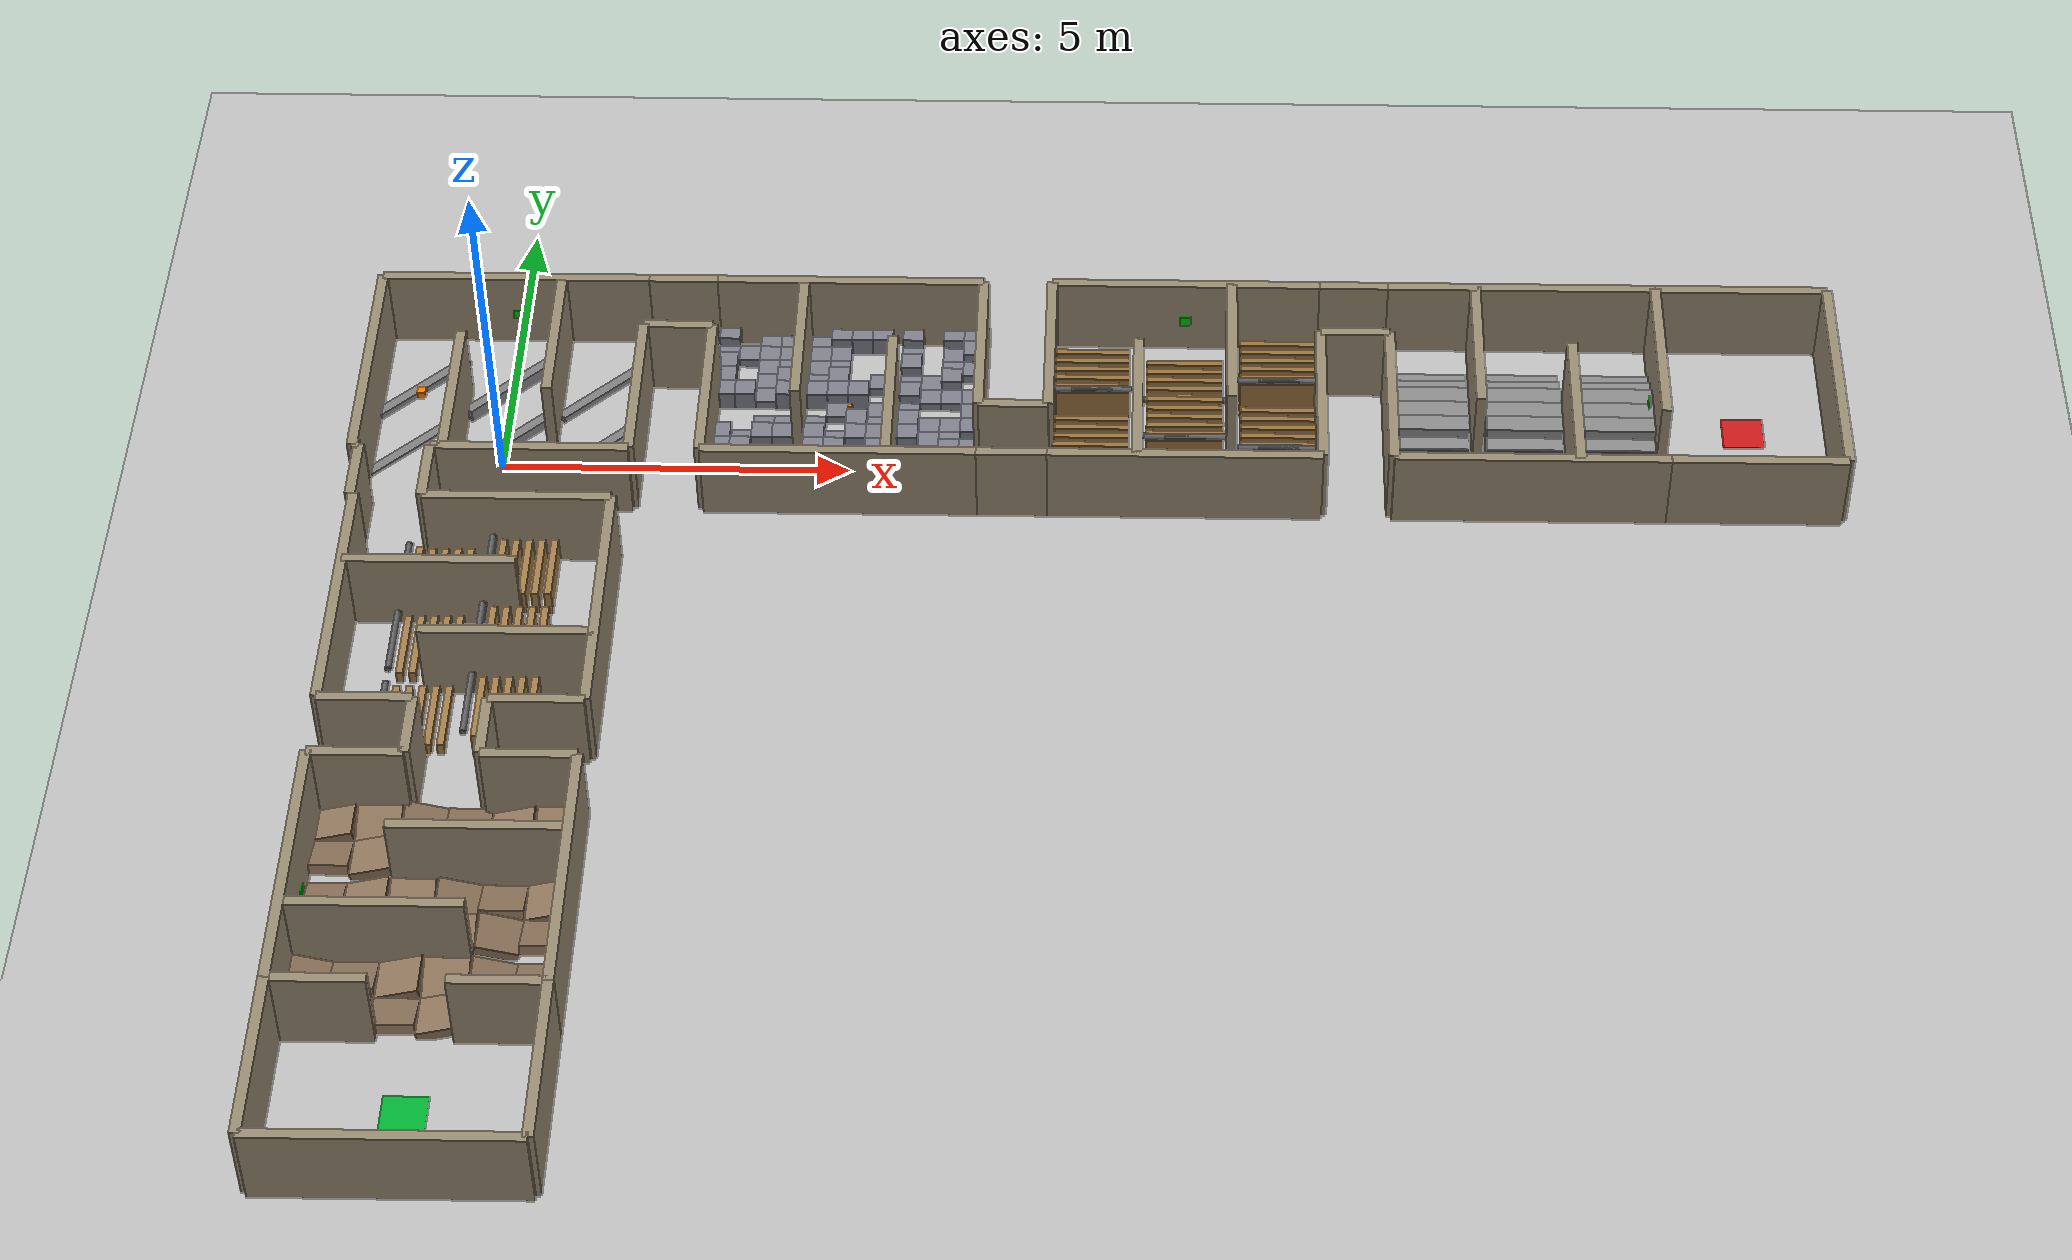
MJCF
<mujoco model="lrc_2026">
  <compiler angle="radian" coordinate="local"/>
  <option timestep="0.002" gravity="0 0 -9.81"/>

  <asset>
    <texture name="grid" type="2d" builtin="checker"
             rgb1="0.8 0.8 0.8" rgb2="0.7 0.7 0.7"
             width="512" height="512"/>
    <material name="ground_mat" texture="grid" texrepeat="10 10"/>
  </asset>

  <worldbody>
    <light pos="0 0 10" dir="-0.5 0.1 -0.9" diffuse="0.8 0.8 0.8"/>
    <geom name="ground" type="plane" size="25 25 0.1"
          material="ground_mat"/>

    <geom name="LA_S_a" type="box" pos="-1.1500 -10.6000 0.6000" size="0.6500 0.0750 0.6000" rgba="0.6 0.55 0.45 1.0"/>
    <geom name="LA_S_b" type="box" pos="1.1500 -10.6000 0.6000" size="0.6500 0.0750 0.6000" rgba="0.6 0.55 0.45 1.0"/>
    <geom name="LA_N_a" type="box" pos="-1.1500 -6.7000 0.6000" size="0.6500 0.0750 0.6000" rgba="0.6 0.55 0.45 1.0"/>
    <geom name="LA_N_b" type="box" pos="1.1500 -6.7000 0.6000" size="0.6500 0.0750 0.6000" rgba="0.6 0.55 0.45 1.0"/>
    <geom name="LA_W" type="box" pos="-1.8000 -8.6500 0.6000" size="0.0750 1.9500 0.6000" rgba="0.6 0.55 0.45 1.0"/>
    <geom name="LA_E" type="box" pos="1.8000 -8.6500 0.6000" size="0.0750 1.9500 0.6000" rgba="0.6 0.55 0.45 1.0"/>
    <geom name="LA_d0" type="box" pos="-0.6000 -9.3250 0.6000" size="1.2000 0.0750 0.6000" rgba="0.6 0.55 0.45 1.0"/>
    <geom name="LA_d1" type="box" pos="0.6000 -7.9750 0.6000" size="1.2000 0.0750 0.6000" rgba="0.6 0.55 0.45 1.0"/>
    <geom name="ramp_0_0_0" type="box" pos="-1.5000 -10.3000 0.0800" size="0.3000 0.3000 0.0800" rgba="0.55 0.45 0.35 1.0" euler="0.2618 0 0"/>
    <geom name="ramp_0_0_1" type="box" pos="-0.9000 -10.3000 0.0800" size="0.3000 0.3000 0.0800" rgba="0.55 0.45 0.35 1.0" euler="0 0.2618 0"/>
    <geom name="ramp_0_0_2" type="box" pos="-0.3000 -10.3000 0.0800" size="0.3000 0.3000 0.0800" rgba="0.55 0.45 0.35 1.0" euler="-0.2618 0 0"/>
    <geom name="ramp_0_0_3" type="box" pos="0.3000 -10.3000 0.0800" size="0.3000 0.3000 0.0800" rgba="0.55 0.45 0.35 1.0" euler="0 -0.2618 0"/>
    <geom name="ramp_0_0_4" type="box" pos="0.9000 -10.3000 0.0800" size="0.3000 0.3000 0.0800" rgba="0.55 0.45 0.35 1.0" euler="0.2618 0 0"/>
    <geom name="ramp_0_0_5" type="box" pos="1.5000 -10.3000 0.0800" size="0.3000 0.3000 0.0800" rgba="0.55 0.45 0.35 1.0" euler="0 0.2618 0"/>
    <geom name="ramp_0_1_0" type="box" pos="-1.5000 -9.7000 0.0800" size="0.3000 0.3000 0.0800" rgba="0.55 0.45 0.35 1.0" euler="0 0.2618 0"/>
    <geom name="ramp_0_1_1" type="box" pos="-0.9000 -9.7000 0.0800" size="0.3000 0.3000 0.0800" rgba="0.55 0.45 0.35 1.0" euler="-0.2618 0 0"/>
    <geom name="ramp_0_1_2" type="box" pos="-0.3000 -9.7000 0.0800" size="0.3000 0.3000 0.0800" rgba="0.55 0.45 0.35 1.0" euler="0 -0.2618 0"/>
    <geom name="ramp_0_1_3" type="box" pos="0.3000 -9.7000 0.0800" size="0.3000 0.3000 0.0800" rgba="0.55 0.45 0.35 1.0" euler="0.2618 0 0"/>
    <geom name="ramp_0_1_4" type="box" pos="0.9000 -9.7000 0.0800" size="0.3000 0.3000 0.0800" rgba="0.55 0.45 0.35 1.0" euler="0 0.2618 0"/>
    <geom name="ramp_0_1_5" type="box" pos="1.5000 -9.7000 0.0800" size="0.3000 0.3000 0.0800" rgba="0.55 0.45 0.35 1.0" euler="-0.2618 0 0"/>
    <geom name="ramp_1_0_0" type="box" pos="-1.5000 -8.9500 0.0800" size="0.3000 0.3000 0.0800" rgba="0.55 0.45 0.35 1.0" euler="0 0.2618 0"/>
    <geom name="ramp_1_0_1" type="box" pos="-0.9000 -8.9500 0.0800" size="0.3000 0.3000 0.0800" rgba="0.55 0.45 0.35 1.0" euler="-0.2618 0 0"/>
    <geom name="ramp_1_0_2" type="box" pos="-0.3000 -8.9500 0.0800" size="0.3000 0.3000 0.0800" rgba="0.55 0.45 0.35 1.0" euler="0 -0.2618 0"/>
    <geom name="ramp_1_0_3" type="box" pos="0.3000 -8.9500 0.0800" size="0.3000 0.3000 0.0800" rgba="0.55 0.45 0.35 1.0" euler="0.2618 0 0"/>
    <geom name="ramp_1_0_4" type="box" pos="0.9000 -8.9500 0.0800" size="0.3000 0.3000 0.0800" rgba="0.55 0.45 0.35 1.0" euler="0 0.2618 0"/>
    <geom name="ramp_1_0_5" type="box" pos="1.5000 -8.9500 0.0800" size="0.3000 0.3000 0.0800" rgba="0.55 0.45 0.35 1.0" euler="-0.2618 0 0"/>
    <geom name="ramp_1_1_0" type="box" pos="-1.5000 -8.3500 0.0800" size="0.3000 0.3000 0.0800" rgba="0.55 0.45 0.35 1.0" euler="-0.2618 0 0"/>
    <geom name="ramp_1_1_1" type="box" pos="-0.9000 -8.3500 0.0800" size="0.3000 0.3000 0.0800" rgba="0.55 0.45 0.35 1.0" euler="0 -0.2618 0"/>
    <geom name="ramp_1_1_2" type="box" pos="-0.3000 -8.3500 0.0800" size="0.3000 0.3000 0.0800" rgba="0.55 0.45 0.35 1.0" euler="0.2618 0 0"/>
    <geom name="ramp_1_1_3" type="box" pos="0.3000 -8.3500 0.0800" size="0.3000 0.3000 0.0800" rgba="0.55 0.45 0.35 1.0" euler="0 0.2618 0"/>
    <geom name="ramp_1_1_4" type="box" pos="0.9000 -8.3500 0.0800" size="0.3000 0.3000 0.0800" rgba="0.55 0.45 0.35 1.0" euler="-0.2618 0 0"/>
    <geom name="ramp_1_1_5" type="box" pos="1.5000 -8.3500 0.0800" size="0.3000 0.3000 0.0800" rgba="0.55 0.45 0.35 1.0" euler="0 -0.2618 0"/>
    <geom name="ramp_2_0_0" type="box" pos="-1.5000 -7.6000 0.0800" size="0.3000 0.3000 0.0800" rgba="0.55 0.45 0.35 1.0" euler="-0.2618 0 0"/>
    <geom name="ramp_2_0_1" type="box" pos="-0.9000 -7.6000 0.0800" size="0.3000 0.3000 0.0800" rgba="0.55 0.45 0.35 1.0" euler="0 -0.2618 0"/>
    <geom name="ramp_2_0_2" type="box" pos="-0.3000 -7.6000 0.0800" size="0.3000 0.3000 0.0800" rgba="0.55 0.45 0.35 1.0" euler="0.2618 0 0"/>
    <geom name="ramp_2_0_3" type="box" pos="0.3000 -7.6000 0.0800" size="0.3000 0.3000 0.0800" rgba="0.55 0.45 0.35 1.0" euler="0 0.2618 0"/>
    <geom name="ramp_2_0_4" type="box" pos="0.9000 -7.6000 0.0800" size="0.3000 0.3000 0.0800" rgba="0.55 0.45 0.35 1.0" euler="-0.2618 0 0"/>
    <geom name="ramp_2_0_5" type="box" pos="1.5000 -7.6000 0.0800" size="0.3000 0.3000 0.0800" rgba="0.55 0.45 0.35 1.0" euler="0 -0.2618 0"/>
    <geom name="ramp_2_1_0" type="box" pos="-1.5000 -7.0000 0.0800" size="0.3000 0.3000 0.0800" rgba="0.55 0.45 0.35 1.0" euler="0 -0.2618 0"/>
    <geom name="ramp_2_1_1" type="box" pos="-0.9000 -7.0000 0.0800" size="0.3000 0.3000 0.0800" rgba="0.55 0.45 0.35 1.0" euler="0.2618 0 0"/>
    <geom name="ramp_2_1_2" type="box" pos="-0.3000 -7.0000 0.0800" size="0.3000 0.3000 0.0800" rgba="0.55 0.45 0.35 1.0" euler="0 0.2618 0"/>
    <geom name="ramp_2_1_3" type="box" pos="0.3000 -7.0000 0.0800" size="0.3000 0.3000 0.0800" rgba="0.55 0.45 0.35 1.0" euler="-0.2618 0 0"/>
    <geom name="ramp_2_1_4" type="box" pos="0.9000 -7.0000 0.0800" size="0.3000 0.3000 0.0800" rgba="0.55 0.45 0.35 1.0" euler="0 -0.2618 0"/>
    <geom name="ramp_2_1_5" type="box" pos="1.5000 -7.0000 0.0800" size="0.3000 0.3000 0.0800" rgba="0.55 0.45 0.35 1.0" euler="0.2618 0 0"/>
    <geom name="qr_A" type="box" pos="-1.6500 -8.6500 0.6000" size="0.0100 0.0750 0.0750" rgba="0.0 0.8 0.0 1.0"/>
    <geom name="haz_A" type="box" pos="0.5000 -10.0000 0.0600" size="0.0600 0.0600 0.0600" rgba="1.0 0.5 0.0 1.0"/>
    <geom name="LB_S_a" type="box" pos="-1.1500 -5.7000 0.6000" size="0.6500 0.0750 0.6000" rgba="0.6 0.55 0.45 1.0"/>
    <geom name="LB_S_b" type="box" pos="1.1500 -5.7000 0.6000" size="0.6500 0.0750 0.6000" rgba="0.6 0.55 0.45 1.0"/>
    <geom name="LB_N_b" type="box" pos="0.4750 -1.8000 0.6000" size="1.3250 0.0750 0.6000" rgba="0.6 0.55 0.45 1.0"/>
    <geom name="LB_W" type="box" pos="-1.8000 -3.7500 0.6000" size="0.0750 1.9500 0.6000" rgba="0.6 0.55 0.45 1.0"/>
    <geom name="LB_E" type="box" pos="1.8000 -3.7500 0.6000" size="0.0750 1.9500 0.6000" rgba="0.6 0.55 0.45 1.0"/>
    <geom name="LB_d0" type="box" pos="0.6000 -4.4250 0.6000" size="1.2000 0.0750 0.6000" rgba="0.6 0.55 0.45 1.0"/>
    <geom name="LB_d1" type="box" pos="-0.6000 -3.0750 0.6000" size="1.2000 0.0750 0.6000" rgba="0.6 0.55 0.45 1.0"/>
    <geom name="plt_0_0_0" type="box" pos="-0.9600 -5.1000 0.1000" size="0.0500 0.5500 0.1000" rgba="0.65 0.5 0.3 1.0"/>
    <geom name="plt_0_0_1" type="box" pos="-0.7800 -5.1000 0.1000" size="0.0500 0.5500 0.1000" rgba="0.65 0.5 0.3 1.0"/>
    <geom name="plt_0_0_2" type="box" pos="-0.6000 -5.1000 0.1000" size="0.0500 0.5500 0.1000" rgba="0.65 0.5 0.3 1.0"/>
    <geom name="plt_0_0_3" type="box" pos="-0.4200 -5.1000 0.1000" size="0.0500 0.5500 0.1000" rgba="0.65 0.5 0.3 1.0"/>
    <geom name="plt_0_0_4" type="box" pos="-0.2400 -5.1000 0.1000" size="0.0500 0.5500 0.1000" rgba="0.65 0.5 0.3 1.0"/>
    <geom name="pipe_0_0" type="cylinder" pos="-1.1000 -5.1000 0.2500" size="0.05 0.5500" rgba="0.4 0.4 0.4 1.0" euler="1.5708 0 0"/>
    <geom name="plt_0_1_0" type="box" pos="0.2400 -5.1000 0.2000" size="0.0500 0.5500 0.2000" rgba="0.65 0.5 0.3 1.0"/>
    <geom name="plt_0_1_1" type="box" pos="0.4200 -5.1000 0.2000" size="0.0500 0.5500 0.2000" rgba="0.65 0.5 0.3 1.0"/>
    <geom name="plt_0_1_2" type="box" pos="0.6000 -5.1000 0.2000" size="0.0500 0.5500 0.2000" rgba="0.65 0.5 0.3 1.0"/>
    <geom name="plt_0_1_3" type="box" pos="0.7800 -5.1000 0.2000" size="0.0500 0.5500 0.2000" rgba="0.65 0.5 0.3 1.0"/>
    <geom name="plt_0_1_4" type="box" pos="0.9600 -5.1000 0.2000" size="0.0500 0.5500 0.2000" rgba="0.65 0.5 0.3 1.0"/>
    <geom name="pipe_0_1" type="cylinder" pos="0.1000 -5.1000 0.4500" size="0.05 0.5500" rgba="0.4 0.4 0.4 1.0" euler="1.5708 0 0"/>
    <geom name="plt_1_0_0" type="box" pos="-0.9600 -3.7500 0.1000" size="0.0500 0.5500 0.1000" rgba="0.65 0.5 0.3 1.0"/>
    <geom name="plt_1_0_1" type="box" pos="-0.7800 -3.7500 0.1000" size="0.0500 0.5500 0.1000" rgba="0.65 0.5 0.3 1.0"/>
    <geom name="plt_1_0_2" type="box" pos="-0.6000 -3.7500 0.1000" size="0.0500 0.5500 0.1000" rgba="0.65 0.5 0.3 1.0"/>
    <geom name="plt_1_0_3" type="box" pos="-0.4200 -3.7500 0.1000" size="0.0500 0.5500 0.1000" rgba="0.65 0.5 0.3 1.0"/>
    <geom name="plt_1_0_4" type="box" pos="-0.2400 -3.7500 0.1000" size="0.0500 0.5500 0.1000" rgba="0.65 0.5 0.3 1.0"/>
    <geom name="pipe_1_0" type="cylinder" pos="-1.1000 -3.7500 0.2500" size="0.05 0.5500" rgba="0.4 0.4 0.4 1.0" euler="1.5708 0 0"/>
    <geom name="plt_1_1_0" type="box" pos="0.2400 -3.7500 0.2000" size="0.0500 0.5500 0.2000" rgba="0.65 0.5 0.3 1.0"/>
    <geom name="plt_1_1_1" type="box" pos="0.4200 -3.7500 0.2000" size="0.0500 0.5500 0.2000" rgba="0.65 0.5 0.3 1.0"/>
    <geom name="plt_1_1_2" type="box" pos="0.6000 -3.7500 0.2000" size="0.0500 0.5500 0.2000" rgba="0.65 0.5 0.3 1.0"/>
    <geom name="plt_1_1_3" type="box" pos="0.7800 -3.7500 0.2000" size="0.0500 0.5500 0.2000" rgba="0.65 0.5 0.3 1.0"/>
    <geom name="plt_1_1_4" type="box" pos="0.9600 -3.7500 0.2000" size="0.0500 0.5500 0.2000" rgba="0.65 0.5 0.3 1.0"/>
    <geom name="pipe_1_1" type="cylinder" pos="0.1000 -3.7500 0.4500" size="0.05 0.5500" rgba="0.4 0.4 0.4 1.0" euler="1.5708 0 0"/>
    <geom name="plt_2_0_0" type="box" pos="-0.9600 -2.4000 0.1000" size="0.0500 0.5500 0.1000" rgba="0.65 0.5 0.3 1.0"/>
    <geom name="plt_2_0_1" type="box" pos="-0.7800 -2.4000 0.1000" size="0.0500 0.5500 0.1000" rgba="0.65 0.5 0.3 1.0"/>
    <geom name="plt_2_0_2" type="box" pos="-0.6000 -2.4000 0.1000" size="0.0500 0.5500 0.1000" rgba="0.65 0.5 0.3 1.0"/>
    <geom name="plt_2_0_3" type="box" pos="-0.4200 -2.4000 0.1000" size="0.0500 0.5500 0.1000" rgba="0.65 0.5 0.3 1.0"/>
    <geom name="plt_2_0_4" type="box" pos="-0.2400 -2.4000 0.1000" size="0.0500 0.5500 0.1000" rgba="0.65 0.5 0.3 1.0"/>
    <geom name="pipe_2_0" type="cylinder" pos="-1.1000 -2.4000 0.2500" size="0.05 0.5500" rgba="0.4 0.4 0.4 1.0" euler="1.5708 0 0"/>
    <geom name="plt_2_1_0" type="box" pos="0.2400 -2.4000 0.2000" size="0.0500 0.5500 0.2000" rgba="0.65 0.5 0.3 1.0"/>
    <geom name="plt_2_1_1" type="box" pos="0.4200 -2.4000 0.2000" size="0.0500 0.5500 0.2000" rgba="0.65 0.5 0.3 1.0"/>
    <geom name="plt_2_1_2" type="box" pos="0.6000 -2.4000 0.2000" size="0.0500 0.5500 0.2000" rgba="0.65 0.5 0.3 1.0"/>
    <geom name="plt_2_1_3" type="box" pos="0.7800 -2.4000 0.2000" size="0.0500 0.5500 0.2000" rgba="0.65 0.5 0.3 1.0"/>
    <geom name="plt_2_1_4" type="box" pos="0.9600 -2.4000 0.2000" size="0.0500 0.5500 0.2000" rgba="0.65 0.5 0.3 1.0"/>
    <geom name="pipe_2_1" type="cylinder" pos="0.1000 -2.4000 0.4500" size="0.05 0.5500" rgba="0.4 0.4 0.4 1.0" euler="1.5708 0 0"/>
    <geom name="qr_B" type="box" pos="1.6500 -3.7500 0.6000" size="0.0100 0.0750 0.0750" rgba="0.0 0.8 0.0 1.0"/>
    <geom name="haz_B" type="box" pos="-0.5000 -2.4000 0.0600" size="0.0600 0.0600 0.0600" rgba="1.0 0.5 0.0 1.0"/>
    <geom name="LC_S_a" type="box" pos="-1.9000 -0.8000 0.6000" size="0.0500 0.0750 0.6000" rgba="0.6 0.55 0.45 1.0"/>
    <geom name="LC_S_b" type="box" pos="0.5500 -0.8000 0.6000" size="1.4000 0.0750 0.6000" rgba="0.6 0.55 0.45 1.0"/>
    <geom name="LC_N" type="box" pos="0.0000 2.8000 0.6000" size="1.9500 0.0750 0.6000" rgba="0.6 0.55 0.45 1.0"/>
    <geom name="LC_W" type="box" pos="-1.9500 1.0000 0.6000" size="0.0750 1.8000 0.6000" rgba="0.6 0.55 0.45 1.0"/>
    <geom name="LC_E_a" type="box" pos="1.9500 0.5000 0.6000" size="0.0750 1.3000 0.6000" rgba="0.6 0.55 0.45 1.0"/>
    <geom name="LC_d0" type="box" pos="-0.6750 0.4000 0.6000" size="0.0750 1.2000 0.6000" rgba="0.6 0.55 0.45 1.0"/>
    <geom name="LC_d1" type="box" pos="0.6750 1.6000 0.6000" size="0.0750 1.2000 0.6000" rgba="0.6 0.55 0.45 1.0"/>
    <geom name="kr_0_0" type="box" pos="-1.3500 0.4000 0.0250" size="0.8500 0.0750 0.0250" rgba="0.5 0.5 0.5 1.0" euler="0 0 0.7854"/>
    <geom name="kr_0_1" type="box" pos="-1.3500 1.6000 0.0500" size="0.8500 0.0750 0.0500" rgba="0.5 0.5 0.5 1.0" euler="0 0 0.7854"/>
    <geom name="kr_1_0" type="box" pos="0.0000 0.4000 0.0750" size="0.8500 0.0750 0.0750" rgba="0.5 0.5 0.5 1.0" euler="0 0 0.7854"/>
    <geom name="kr_1_1" type="box" pos="0.0000 1.6000 0.1000" size="0.8500 0.0750 0.1000" rgba="0.5 0.5 0.5 1.0" euler="0 0 0.7854"/>
    <geom name="kr_2_0" type="box" pos="1.3500 0.4000 0.0250" size="0.8500 0.0750 0.0250" rgba="0.5 0.5 0.5 1.0" euler="0 0 0.7854"/>
    <geom name="kr_2_1" type="box" pos="1.3500 1.6000 0.0500" size="0.8500 0.0750 0.0500" rgba="0.5 0.5 0.5 1.0" euler="0 0 0.7854"/>
    <geom name="qr_C" type="box" pos="0 2.6500 0.6000" size="0.0750 0.0100 0.0750" rgba="0.0 0.8 0.0 1.0"/>
    <geom name="haz_C" type="box" pos="-1.3500 1.5000 0.0600" size="0.0600 0.0600 0.0600" rgba="1.0 0.5 0.0 1.0"/>
    <geom name="LD_S" type="box" pos="4.9000 -0.8000 0.6000" size="1.9500 0.0750 0.6000" rgba="0.6 0.55 0.45 1.0"/>
    <geom name="LD_N" type="box" pos="4.9000 2.8000 0.6000" size="1.9500 0.0750 0.6000" rgba="0.6 0.55 0.45 1.0"/>
    <geom name="LD_W_a" type="box" pos="2.9500 0.5000 0.6000" size="0.0750 1.3000 0.6000" rgba="0.6 0.55 0.45 1.0"/>
    <geom name="LD_E_b" type="box" pos="6.8500 1.5000 0.6000" size="0.0750 1.3000 0.6000" rgba="0.6 0.55 0.45 1.0"/>
    <geom name="LD_d0" type="box" pos="4.2250 1.6000 0.6000" size="0.0750 1.2000 0.6000" rgba="0.6 0.55 0.45 1.0"/>
    <geom name="LD_d1" type="box" pos="5.5750 0.4000 0.6000" size="0.0750 1.2000 0.6000" rgba="0.6 0.55 0.45 1.0"/>
    <geom name="sf_0_0_1" type="box" pos="3.1000 -0.3500 0.0750" size="0.1500 0.1500 0.0750" rgba="0.5 0.5 0.55 1.0"/>
    <geom name="sf_0_0_2" type="box" pos="3.1000 -0.0500 0.1500" size="0.1500 0.1500 0.1500" rgba="0.5 0.5 0.55 1.0"/>
    <geom name="sf_0_0_3" type="box" pos="3.1000 0.2500 0.1500" size="0.1500 0.1500 0.1500" rgba="0.5 0.5 0.55 1.0"/>
    <geom name="sf_0_0_4" type="box" pos="3.1000 0.5500 0.1500" size="0.1500 0.1500 0.1500" rgba="0.5 0.5 0.55 1.0"/>
    <geom name="sf_0_0_7" type="box" pos="3.1000 1.4500 0.1500" size="0.1500 0.1500 0.1500" rgba="0.5 0.5 0.55 1.0"/>
    <geom name="sf_0_0_8" type="box" pos="3.1000 1.7500 0.1500" size="0.1500 0.1500 0.1500" rgba="0.5 0.5 0.55 1.0"/>
    <geom name="sf_0_0_9" type="box" pos="3.1000 2.0500 0.1500" size="0.1500 0.1500 0.1500" rgba="0.5 0.5 0.55 1.0"/>
    <geom name="sf_0_0_10" type="box" pos="3.1000 2.3500 0.0750" size="0.1500 0.1500 0.0750" rgba="0.5 0.5 0.55 1.0"/>
    <geom name="sf_0_0_11" type="box" pos="3.1000 2.6500 0.1500" size="0.1500 0.1500 0.1500" rgba="0.5 0.5 0.55 1.0"/>
    <geom name="sf_0_1_0" type="box" pos="3.4000 -0.6500 0.1500" size="0.1500 0.1500 0.1500" rgba="0.5 0.5 0.55 1.0"/>
    <geom name="sf_0_1_1" type="box" pos="3.4000 -0.3500 0.1500" size="0.1500 0.1500 0.1500" rgba="0.5 0.5 0.55 1.0"/>
    <geom name="sf_0_1_2" type="box" pos="3.4000 -0.0500 0.0750" size="0.1500 0.1500 0.0750" rgba="0.5 0.5 0.55 1.0"/>
    <geom name="sf_0_1_3" type="box" pos="3.4000 0.2500 0.1500" size="0.1500 0.1500 0.1500" rgba="0.5 0.5 0.55 1.0"/>
    <geom name="sf_0_1_4" type="box" pos="3.4000 0.5500 0.0750" size="0.1500 0.1500 0.0750" rgba="0.5 0.5 0.55 1.0"/>
    <geom name="sf_0_1_7" type="box" pos="3.4000 1.4500 0.1500" size="0.1500 0.1500 0.1500" rgba="0.5 0.5 0.55 1.0"/>
    <geom name="sf_0_1_10" type="box" pos="3.4000 2.3500 0.0750" size="0.1500 0.1500 0.0750" rgba="0.5 0.5 0.55 1.0"/>
    <geom name="sf_0_2_0" type="box" pos="3.7000 -0.6500 0.0750" size="0.1500 0.1500 0.0750" rgba="0.5 0.5 0.55 1.0"/>
    <geom name="sf_0_2_2" type="box" pos="3.7000 -0.0500 0.1500" size="0.1500 0.1500 0.1500" rgba="0.5 0.5 0.55 1.0"/>
    <geom name="sf_0_2_3" type="box" pos="3.7000 0.2500 0.0750" size="0.1500 0.1500 0.0750" rgba="0.5 0.5 0.55 1.0"/>
    <geom name="sf_0_2_4" type="box" pos="3.7000 0.5500 0.1500" size="0.1500 0.1500 0.1500" rgba="0.5 0.5 0.55 1.0"/>
    <geom name="sf_0_2_5" type="box" pos="3.7000 0.8500 0.0750" size="0.1500 0.1500 0.0750" rgba="0.5 0.5 0.55 1.0"/>
    <geom name="sf_0_2_7" type="box" pos="3.7000 1.4500 0.0750" size="0.1500 0.1500 0.0750" rgba="0.5 0.5 0.55 1.0"/>
    <geom name="sf_0_2_8" type="box" pos="3.7000 1.7500 0.0750" size="0.1500 0.1500 0.0750" rgba="0.5 0.5 0.55 1.0"/>
    <geom name="sf_0_2_9" type="box" pos="3.7000 2.0500 0.0750" size="0.1500 0.1500 0.0750" rgba="0.5 0.5 0.55 1.0"/>
    <geom name="sf_0_2_10" type="box" pos="3.7000 2.3500 0.0750" size="0.1500 0.1500 0.0750" rgba="0.5 0.5 0.55 1.0"/>
    <geom name="sf_0_2_11" type="box" pos="3.7000 2.6500 0.0750" size="0.1500 0.1500 0.0750" rgba="0.5 0.5 0.55 1.0"/>
    <geom name="sf_0_3_0" type="box" pos="4.0000 -0.6500 0.1500" size="0.1500 0.1500 0.1500" rgba="0.5 0.5 0.55 1.0"/>
    <geom name="sf_0_3_1" type="box" pos="4.0000 -0.3500 0.1500" size="0.1500 0.1500 0.1500" rgba="0.5 0.5 0.55 1.0"/>
    <geom name="sf_0_3_2" type="box" pos="4.0000 -0.0500 0.1500" size="0.1500 0.1500 0.1500" rgba="0.5 0.5 0.55 1.0"/>
    <geom name="sf_0_3_4" type="box" pos="4.0000 0.5500 0.1500" size="0.1500 0.1500 0.1500" rgba="0.5 0.5 0.55 1.0"/>
    <geom name="sf_0_3_5" type="box" pos="4.0000 0.8500 0.0750" size="0.1500 0.1500 0.0750" rgba="0.5 0.5 0.55 1.0"/>
    <geom name="sf_0_3_7" type="box" pos="4.0000 1.4500 0.1500" size="0.1500 0.1500 0.1500" rgba="0.5 0.5 0.55 1.0"/>
    <geom name="sf_0_3_8" type="box" pos="4.0000 1.7500 0.1500" size="0.1500 0.1500 0.1500" rgba="0.5 0.5 0.55 1.0"/>
    <geom name="sf_0_3_9" type="box" pos="4.0000 2.0500 0.0750" size="0.1500 0.1500 0.0750" rgba="0.5 0.5 0.55 1.0"/>
    <geom name="sf_0_3_10" type="box" pos="4.0000 2.3500 0.0750" size="0.1500 0.1500 0.0750" rgba="0.5 0.5 0.55 1.0"/>
    <geom name="sf_0_3_11" type="box" pos="4.0000 2.6500 0.0750" size="0.1500 0.1500 0.0750" rgba="0.5 0.5 0.55 1.0"/>
    <geom name="sf_1_0_1" type="box" pos="4.4500 -0.3500 0.1500" size="0.1500 0.1500 0.1500" rgba="0.5 0.5 0.55 1.0"/>
    <geom name="sf_1_0_2" type="box" pos="4.4500 -0.0500 0.1500" size="0.1500 0.1500 0.1500" rgba="0.5 0.5 0.55 1.0"/>
    <geom name="sf_1_0_3" type="box" pos="4.4500 0.2500 0.1500" size="0.1500 0.1500 0.1500" rgba="0.5 0.5 0.55 1.0"/>
    <geom name="sf_1_0_4" type="box" pos="4.4500 0.5500 0.1500" size="0.1500 0.1500 0.1500" rgba="0.5 0.5 0.55 1.0"/>
    <geom name="sf_1_0_5" type="box" pos="4.4500 0.8500 0.0750" size="0.1500 0.1500 0.0750" rgba="0.5 0.5 0.55 1.0"/>
    <geom name="sf_1_0_7" type="box" pos="4.4500 1.4500 0.1500" size="0.1500 0.1500 0.1500" rgba="0.5 0.5 0.55 1.0"/>
    <geom name="sf_1_0_8" type="box" pos="4.4500 1.7500 0.0750" size="0.1500 0.1500 0.0750" rgba="0.5 0.5 0.55 1.0"/>
    <geom name="sf_1_0_9" type="box" pos="4.4500 2.0500 0.0750" size="0.1500 0.1500 0.0750" rgba="0.5 0.5 0.55 1.0"/>
    <geom name="sf_1_0_10" type="box" pos="4.4500 2.3500 0.0750" size="0.1500 0.1500 0.0750" rgba="0.5 0.5 0.55 1.0"/>
    <geom name="sf_1_0_11" type="box" pos="4.4500 2.6500 0.0750" size="0.1500 0.1500 0.0750" rgba="0.5 0.5 0.55 1.0"/>
    <geom name="sf_1_1_1" type="box" pos="4.7500 -0.3500 0.0750" size="0.1500 0.1500 0.0750" rgba="0.5 0.5 0.55 1.0"/>
    <geom name="sf_1_1_2" type="box" pos="4.7500 -0.0500 0.1500" size="0.1500 0.1500 0.1500" rgba="0.5 0.5 0.55 1.0"/>
    <geom name="sf_1_1_3" type="box" pos="4.7500 0.2500 0.1500" size="0.1500 0.1500 0.1500" rgba="0.5 0.5 0.55 1.0"/>
    <geom name="sf_1_1_4" type="box" pos="4.7500 0.5500 0.0750" size="0.1500 0.1500 0.0750" rgba="0.5 0.5 0.55 1.0"/>
    <geom name="sf_1_1_6" type="box" pos="4.7500 1.1500 0.0750" size="0.1500 0.1500 0.0750" rgba="0.5 0.5 0.55 1.0"/>
    <geom name="sf_1_1_7" type="box" pos="4.7500 1.4500 0.1500" size="0.1500 0.1500 0.1500" rgba="0.5 0.5 0.55 1.0"/>
    <geom name="sf_1_1_8" type="box" pos="4.7500 1.7500 0.1500" size="0.1500 0.1500 0.1500" rgba="0.5 0.5 0.55 1.0"/>
    <geom name="sf_1_1_9" type="box" pos="4.7500 2.0500 0.0750" size="0.1500 0.1500 0.0750" rgba="0.5 0.5 0.55 1.0"/>
    <geom name="sf_1_1_10" type="box" pos="4.7500 2.3500 0.0750" size="0.1500 0.1500 0.0750" rgba="0.5 0.5 0.55 1.0"/>
    <geom name="sf_1_1_11" type="box" pos="4.7500 2.6500 0.1500" size="0.1500 0.1500 0.1500" rgba="0.5 0.5 0.55 1.0"/>
    <geom name="sf_1_2_0" type="box" pos="5.0500 -0.6500 0.0750" size="0.1500 0.1500 0.0750" rgba="0.5 0.5 0.55 1.0"/>
    <geom name="sf_1_2_1" type="box" pos="5.0500 -0.3500 0.0750" size="0.1500 0.1500 0.0750" rgba="0.5 0.5 0.55 1.0"/>
    <geom name="sf_1_2_2" type="box" pos="5.0500 -0.0500 0.1500" size="0.1500 0.1500 0.1500" rgba="0.5 0.5 0.55 1.0"/>
    <geom name="sf_1_2_3" type="box" pos="5.0500 0.2500 0.0750" size="0.1500 0.1500 0.0750" rgba="0.5 0.5 0.55 1.0"/>
    <geom name="sf_1_2_4" type="box" pos="5.0500 0.5500 0.1500" size="0.1500 0.1500 0.1500" rgba="0.5 0.5 0.55 1.0"/>
    <geom name="sf_1_2_5" type="box" pos="5.0500 0.8500 0.1500" size="0.1500 0.1500 0.1500" rgba="0.5 0.5 0.55 1.0"/>
    <geom name="sf_1_2_7" type="box" pos="5.0500 1.4500 0.1500" size="0.1500 0.1500 0.1500" rgba="0.5 0.5 0.55 1.0"/>
    <geom name="sf_1_2_11" type="box" pos="5.0500 2.6500 0.1500" size="0.1500 0.1500 0.1500" rgba="0.5 0.5 0.55 1.0"/>
    <geom name="sf_1_3_0" type="box" pos="5.3500 -0.6500 0.1500" size="0.1500 0.1500 0.1500" rgba="0.5 0.5 0.55 1.0"/>
    <geom name="sf_1_3_1" type="box" pos="5.3500 -0.3500 0.1500" size="0.1500 0.1500 0.1500" rgba="0.5 0.5 0.55 1.0"/>
    <geom name="sf_1_3_3" type="box" pos="5.3500 0.2500 0.1500" size="0.1500 0.1500 0.1500" rgba="0.5 0.5 0.55 1.0"/>
    <geom name="sf_1_3_4" type="box" pos="5.3500 0.5500 0.1500" size="0.1500 0.1500 0.1500" rgba="0.5 0.5 0.55 1.0"/>
    <geom name="sf_1_3_5" type="box" pos="5.3500 0.8500 0.0750" size="0.1500 0.1500 0.0750" rgba="0.5 0.5 0.55 1.0"/>
    <geom name="sf_1_3_6" type="box" pos="5.3500 1.1500 0.0750" size="0.1500 0.1500 0.0750" rgba="0.5 0.5 0.55 1.0"/>
    <geom name="sf_1_3_8" type="box" pos="5.3500 1.7500 0.0750" size="0.1500 0.1500 0.0750" rgba="0.5 0.5 0.55 1.0"/>
    <geom name="sf_1_3_11" type="box" pos="5.3500 2.6500 0.1500" size="0.1500 0.1500 0.1500" rgba="0.5 0.5 0.55 1.0"/>
    <geom name="sf_2_0_0" type="box" pos="5.8000 -0.6500 0.1500" size="0.1500 0.1500 0.1500" rgba="0.5 0.5 0.55 1.0"/>
    <geom name="sf_2_0_1" type="box" pos="5.8000 -0.3500 0.0750" size="0.1500 0.1500 0.0750" rgba="0.5 0.5 0.55 1.0"/>
    <geom name="sf_2_0_2" type="box" pos="5.8000 -0.0500 0.1500" size="0.1500 0.1500 0.1500" rgba="0.5 0.5 0.55 1.0"/>
    <geom name="sf_2_0_3" type="box" pos="5.8000 0.2500 0.0750" size="0.1500 0.1500 0.0750" rgba="0.5 0.5 0.55 1.0"/>
    <geom name="sf_2_0_4" type="box" pos="5.8000 0.5500 0.1500" size="0.1500 0.1500 0.1500" rgba="0.5 0.5 0.55 1.0"/>
    <geom name="sf_2_0_5" type="box" pos="5.8000 0.8500 0.1500" size="0.1500 0.1500 0.1500" rgba="0.5 0.5 0.55 1.0"/>
    <geom name="sf_2_0_6" type="box" pos="5.8000 1.1500 0.0750" size="0.1500 0.1500 0.0750" rgba="0.5 0.5 0.55 1.0"/>
    <geom name="sf_2_0_7" type="box" pos="5.8000 1.4500 0.1500" size="0.1500 0.1500 0.1500" rgba="0.5 0.5 0.55 1.0"/>
    <geom name="sf_2_0_8" type="box" pos="5.8000 1.7500 0.0750" size="0.1500 0.1500 0.0750" rgba="0.5 0.5 0.55 1.0"/>
    <geom name="sf_2_0_9" type="box" pos="5.8000 2.0500 0.1500" size="0.1500 0.1500 0.1500" rgba="0.5 0.5 0.55 1.0"/>
    <geom name="sf_2_0_10" type="box" pos="5.8000 2.3500 0.0750" size="0.1500 0.1500 0.0750" rgba="0.5 0.5 0.55 1.0"/>
    <geom name="sf_2_0_11" type="box" pos="5.8000 2.6500 0.1500" size="0.1500 0.1500 0.1500" rgba="0.5 0.5 0.55 1.0"/>
    <geom name="sf_2_1_0" type="box" pos="6.1000 -0.6500 0.1500" size="0.1500 0.1500 0.1500" rgba="0.5 0.5 0.55 1.0"/>
    <geom name="sf_2_1_1" type="box" pos="6.1000 -0.3500 0.1500" size="0.1500 0.1500 0.1500" rgba="0.5 0.5 0.55 1.0"/>
    <geom name="sf_2_1_2" type="box" pos="6.1000 -0.0500 0.1500" size="0.1500 0.1500 0.1500" rgba="0.5 0.5 0.55 1.0"/>
    <geom name="sf_2_1_3" type="box" pos="6.1000 0.2500 0.0750" size="0.1500 0.1500 0.0750" rgba="0.5 0.5 0.55 1.0"/>
    <geom name="sf_2_1_4" type="box" pos="6.1000 0.5500 0.0750" size="0.1500 0.1500 0.0750" rgba="0.5 0.5 0.55 1.0"/>
    <geom name="sf_2_1_5" type="box" pos="6.1000 0.8500 0.0750" size="0.1500 0.1500 0.0750" rgba="0.5 0.5 0.55 1.0"/>
    <geom name="sf_2_1_7" type="box" pos="6.1000 1.4500 0.0750" size="0.1500 0.1500 0.0750" rgba="0.5 0.5 0.55 1.0"/>
    <geom name="sf_2_1_8" type="box" pos="6.1000 1.7500 0.0750" size="0.1500 0.1500 0.0750" rgba="0.5 0.5 0.55 1.0"/>
    <geom name="sf_2_2_0" type="box" pos="6.4000 -0.6500 0.1500" size="0.1500 0.1500 0.1500" rgba="0.5 0.5 0.55 1.0"/>
    <geom name="sf_2_2_1" type="box" pos="6.4000 -0.3500 0.1500" size="0.1500 0.1500 0.1500" rgba="0.5 0.5 0.55 1.0"/>
    <geom name="sf_2_2_2" type="box" pos="6.4000 -0.0500 0.0750" size="0.1500 0.1500 0.0750" rgba="0.5 0.5 0.55 1.0"/>
    <geom name="sf_2_2_3" type="box" pos="6.4000 0.2500 0.1500" size="0.1500 0.1500 0.1500" rgba="0.5 0.5 0.55 1.0"/>
    <geom name="sf_2_2_4" type="box" pos="6.4000 0.5500 0.0750" size="0.1500 0.1500 0.0750" rgba="0.5 0.5 0.55 1.0"/>
    <geom name="sf_2_2_5" type="box" pos="6.4000 0.8500 0.0750" size="0.1500 0.1500 0.0750" rgba="0.5 0.5 0.55 1.0"/>
    <geom name="sf_2_2_7" type="box" pos="6.4000 1.4500 0.0750" size="0.1500 0.1500 0.0750" rgba="0.5 0.5 0.55 1.0"/>
    <geom name="sf_2_2_8" type="box" pos="6.4000 1.7500 0.1500" size="0.1500 0.1500 0.1500" rgba="0.5 0.5 0.55 1.0"/>
    <geom name="sf_2_2_9" type="box" pos="6.4000 2.0500 0.0750" size="0.1500 0.1500 0.0750" rgba="0.5 0.5 0.55 1.0"/>
    <geom name="sf_2_2_10" type="box" pos="6.4000 2.3500 0.0750" size="0.1500 0.1500 0.0750" rgba="0.5 0.5 0.55 1.0"/>
    <geom name="sf_2_2_11" type="box" pos="6.4000 2.6500 0.1500" size="0.1500 0.1500 0.1500" rgba="0.5 0.5 0.55 1.0"/>
    <geom name="sf_2_3_0" type="box" pos="6.7000 -0.6500 0.0750" size="0.1500 0.1500 0.0750" rgba="0.5 0.5 0.55 1.0"/>
    <geom name="sf_2_3_1" type="box" pos="6.7000 -0.3500 0.0750" size="0.1500 0.1500 0.0750" rgba="0.5 0.5 0.55 1.0"/>
    <geom name="sf_2_3_2" type="box" pos="6.7000 -0.0500 0.1500" size="0.1500 0.1500 0.1500" rgba="0.5 0.5 0.55 1.0"/>
    <geom name="sf_2_3_3" type="box" pos="6.7000 0.2500 0.1500" size="0.1500 0.1500 0.1500" rgba="0.5 0.5 0.55 1.0"/>
    <geom name="sf_2_3_5" type="box" pos="6.7000 0.8500 0.0750" size="0.1500 0.1500 0.0750" rgba="0.5 0.5 0.55 1.0"/>
    <geom name="sf_2_3_6" type="box" pos="6.7000 1.1500 0.0750" size="0.1500 0.1500 0.0750" rgba="0.5 0.5 0.55 1.0"/>
    <geom name="sf_2_3_7" type="box" pos="6.7000 1.4500 0.0750" size="0.1500 0.1500 0.0750" rgba="0.5 0.5 0.55 1.0"/>
    <geom name="sf_2_3_9" type="box" pos="6.7000 2.0500 0.0750" size="0.1500 0.1500 0.0750" rgba="0.5 0.5 0.55 1.0"/>
    <geom name="sf_2_3_10" type="box" pos="6.7000 2.3500 0.1500" size="0.1500 0.1500 0.1500" rgba="0.5 0.5 0.55 1.0"/>
    <geom name="sf_2_3_11" type="box" pos="6.7000 2.6500 0.1500" size="0.1500 0.1500 0.1500" rgba="0.5 0.5 0.55 1.0"/>
    <geom name="qr_D" type="box" pos="4.9000 -0.6500 0.6000" size="0.0750 0.0100 0.0750" rgba="0.0 0.8 0.0 1.0"/>
    <geom name="haz_D" type="box" pos="4.9000 1.3000 0.0600" size="0.0600 0.0600 0.0600" rgba="1.0 0.5 0.0 1.0"/>
    <geom name="LE_S" type="box" pos="9.8000 -0.8000 0.6000" size="1.9500 0.0750 0.6000" rgba="0.6 0.55 0.45 1.0"/>
    <geom name="LE_N" type="box" pos="9.8000 2.8000 0.6000" size="1.9500 0.0750 0.6000" rgba="0.6 0.55 0.45 1.0"/>
    <geom name="LE_W_b" type="box" pos="7.8500 1.5000 0.6000" size="0.0750 1.3000 0.6000" rgba="0.6 0.55 0.45 1.0"/>
    <geom name="LE_E_a" type="box" pos="11.7500 0.5000 0.6000" size="0.0750 1.3000 0.6000" rgba="0.6 0.55 0.45 1.0"/>
    <geom name="LE_d0" type="box" pos="9.1250 0.4000 0.6000" size="0.0750 1.2000 0.6000" rgba="0.6 0.55 0.45 1.0"/>
    <geom name="LE_d1" type="box" pos="10.4750 1.6000 0.6000" size="0.0750 1.2000 0.6000" rgba="0.6 0.55 0.45 1.0"/>
    <geom name="pclimb_0_0_0" type="box" pos="8.4500 0.0400 0.2000" size="0.5500 0.0500 0.2000" rgba="0.6 0.45 0.25 1.0"/>
    <geom name="pclimb_0_0_1" type="box" pos="8.4500 0.2200 0.2000" size="0.5500 0.0500 0.2000" rgba="0.6 0.45 0.25 1.0"/>
    <geom name="pclimb_0_0_2" type="box" pos="8.4500 0.4000 0.2000" size="0.5500 0.0500 0.2000" rgba="0.6 0.45 0.25 1.0"/>
    <geom name="pclimb_0_0_3" type="box" pos="8.4500 0.5800 0.2000" size="0.5500 0.0500 0.2000" rgba="0.6 0.45 0.25 1.0"/>
    <geom name="pclimb_0_0_4" type="box" pos="8.4500 0.7600 0.2000" size="0.5500 0.0500 0.2000" rgba="0.6 0.45 0.25 1.0"/>
    <geom name="cpipe_0_0_0" type="cylinder" pos="8.3000 -0.1000 0.4500" size="0.05 0.4400" rgba="0.4 0.4 0.4 1.0" euler="0 1.5708 0"/>
    <geom name="cpipe_0_0_1" type="cylinder" pos="8.6000 -0.1000 0.4500" size="0.05 0.4400" rgba="0.4 0.4 0.4 1.0" euler="0 1.5708 0"/>
    <geom name="pclimb_0_1_0" type="box" pos="8.4500 1.2400 0.3000" size="0.5500 0.0500 0.3000" rgba="0.6 0.45 0.25 1.0"/>
    <geom name="pclimb_0_1_1" type="box" pos="8.4500 1.4200 0.3000" size="0.5500 0.0500 0.3000" rgba="0.6 0.45 0.25 1.0"/>
    <geom name="pclimb_0_1_2" type="box" pos="8.4500 1.6000 0.3000" size="0.5500 0.0500 0.3000" rgba="0.6 0.45 0.25 1.0"/>
    <geom name="pclimb_0_1_3" type="box" pos="8.4500 1.7800 0.3000" size="0.5500 0.0500 0.3000" rgba="0.6 0.45 0.25 1.0"/>
    <geom name="pclimb_0_1_4" type="box" pos="8.4500 1.9600 0.3000" size="0.5500 0.0500 0.3000" rgba="0.6 0.45 0.25 1.0"/>
    <geom name="cpipe_0_1_0" type="cylinder" pos="8.3000 1.1000 0.6500" size="0.05 0.4400" rgba="0.4 0.4 0.4 1.0" euler="0 1.5708 0"/>
    <geom name="cpipe_0_1_1" type="cylinder" pos="8.6000 1.1000 0.6500" size="0.05 0.4400" rgba="0.4 0.4 0.4 1.0" euler="0 1.5708 0"/>
    <geom name="pclimb_1_0_0" type="box" pos="9.8000 0.0400 0.4000" size="0.5500 0.0500 0.4000" rgba="0.6 0.45 0.25 1.0"/>
    <geom name="pclimb_1_0_1" type="box" pos="9.8000 0.2200 0.4000" size="0.5500 0.0500 0.4000" rgba="0.6 0.45 0.25 1.0"/>
    <geom name="pclimb_1_0_2" type="box" pos="9.8000 0.4000 0.4000" size="0.5500 0.0500 0.4000" rgba="0.6 0.45 0.25 1.0"/>
    <geom name="pclimb_1_0_3" type="box" pos="9.8000 0.5800 0.4000" size="0.5500 0.0500 0.4000" rgba="0.6 0.45 0.25 1.0"/>
    <geom name="pclimb_1_0_4" type="box" pos="9.8000 0.7600 0.4000" size="0.5500 0.0500 0.4000" rgba="0.6 0.45 0.25 1.0"/>
    <geom name="cpipe_1_0_0" type="cylinder" pos="9.6500 -0.1000 0.8500" size="0.05 0.4400" rgba="0.4 0.4 0.4 1.0" euler="0 1.5708 0"/>
    <geom name="cpipe_1_0_1" type="cylinder" pos="9.9500 -0.1000 0.8500" size="0.05 0.4400" rgba="0.4 0.4 0.4 1.0" euler="0 1.5708 0"/>
    <geom name="pclimb_1_1_0" type="box" pos="9.8000 1.2400 0.2000" size="0.5500 0.0500 0.2000" rgba="0.6 0.45 0.25 1.0"/>
    <geom name="pclimb_1_1_1" type="box" pos="9.8000 1.4200 0.2000" size="0.5500 0.0500 0.2000" rgba="0.6 0.45 0.25 1.0"/>
    <geom name="pclimb_1_1_2" type="box" pos="9.8000 1.6000 0.2000" size="0.5500 0.0500 0.2000" rgba="0.6 0.45 0.25 1.0"/>
    <geom name="pclimb_1_1_3" type="box" pos="9.8000 1.7800 0.2000" size="0.5500 0.0500 0.2000" rgba="0.6 0.45 0.25 1.0"/>
    <geom name="pclimb_1_1_4" type="box" pos="9.8000 1.9600 0.2000" size="0.5500 0.0500 0.2000" rgba="0.6 0.45 0.25 1.0"/>
    <geom name="cpipe_1_1_0" type="cylinder" pos="9.6500 1.1000 0.4500" size="0.05 0.4400" rgba="0.4 0.4 0.4 1.0" euler="0 1.5708 0"/>
    <geom name="cpipe_1_1_1" type="cylinder" pos="9.9500 1.1000 0.4500" size="0.05 0.4400" rgba="0.4 0.4 0.4 1.0" euler="0 1.5708 0"/>
    <geom name="pclimb_2_0_0" type="box" pos="11.1500 0.0400 0.3000" size="0.5500 0.0500 0.3000" rgba="0.6 0.45 0.25 1.0"/>
    <geom name="pclimb_2_0_1" type="box" pos="11.1500 0.2200 0.3000" size="0.5500 0.0500 0.3000" rgba="0.6 0.45 0.25 1.0"/>
    <geom name="pclimb_2_0_2" type="box" pos="11.1500 0.4000 0.3000" size="0.5500 0.0500 0.3000" rgba="0.6 0.45 0.25 1.0"/>
    <geom name="pclimb_2_0_3" type="box" pos="11.1500 0.5800 0.3000" size="0.5500 0.0500 0.3000" rgba="0.6 0.45 0.25 1.0"/>
    <geom name="pclimb_2_0_4" type="box" pos="11.1500 0.7600 0.3000" size="0.5500 0.0500 0.3000" rgba="0.6 0.45 0.25 1.0"/>
    <geom name="cpipe_2_0_0" type="cylinder" pos="11.0000 -0.1000 0.6500" size="0.05 0.4400" rgba="0.4 0.4 0.4 1.0" euler="0 1.5708 0"/>
    <geom name="cpipe_2_0_1" type="cylinder" pos="11.3000 -0.1000 0.6500" size="0.05 0.4400" rgba="0.4 0.4 0.4 1.0" euler="0 1.5708 0"/>
    <geom name="pclimb_2_1_0" type="box" pos="11.1500 1.2400 0.4000" size="0.5500 0.0500 0.4000" rgba="0.6 0.45 0.25 1.0"/>
    <geom name="pclimb_2_1_1" type="box" pos="11.1500 1.4200 0.4000" size="0.5500 0.0500 0.4000" rgba="0.6 0.45 0.25 1.0"/>
    <geom name="pclimb_2_1_2" type="box" pos="11.1500 1.6000 0.4000" size="0.5500 0.0500 0.4000" rgba="0.6 0.45 0.25 1.0"/>
    <geom name="pclimb_2_1_3" type="box" pos="11.1500 1.7800 0.4000" size="0.5500 0.0500 0.4000" rgba="0.6 0.45 0.25 1.0"/>
    <geom name="pclimb_2_1_4" type="box" pos="11.1500 1.9600 0.4000" size="0.5500 0.0500 0.4000" rgba="0.6 0.45 0.25 1.0"/>
    <geom name="cpipe_2_1_0" type="cylinder" pos="11.0000 1.1000 0.8500" size="0.05 0.4400" rgba="0.4 0.4 0.4 1.0" euler="0 1.5708 0"/>
    <geom name="cpipe_2_1_1" type="cylinder" pos="11.3000 1.1000 0.8500" size="0.05 0.4400" rgba="0.4 0.4 0.4 1.0" euler="0 1.5708 0"/>
    <geom name="qr_E" type="box" pos="9.8000 2.6500 0.6000" size="0.0750 0.0100 0.0750" rgba="0.0 0.8 0.0 1.0"/>
    <geom name="haz_E" type="box" pos="8.4500 0.7000 0.0600" size="0.0600 0.0600 0.0600" rgba="1.0 0.5 0.0 1.0"/>
    <geom name="LF_S" type="box" pos="14.7000 -0.8000 0.6000" size="1.9500 0.0750 0.6000" rgba="0.6 0.55 0.45 1.0"/>
    <geom name="LF_N" type="box" pos="14.7000 2.8000 0.6000" size="1.9500 0.0750 0.6000" rgba="0.6 0.55 0.45 1.0"/>
    <geom name="LF_W_a" type="box" pos="12.7500 0.5000 0.6000" size="0.0750 1.3000 0.6000" rgba="0.6 0.55 0.45 1.0"/>
    <geom name="LF_E_b" type="box" pos="16.6500 1.5000 0.6000" size="0.0750 1.3000 0.6000" rgba="0.6 0.55 0.45 1.0"/>
    <geom name="LF_d0" type="box" pos="14.0250 1.6000 0.6000" size="0.0750 1.2000 0.6000" rgba="0.6 0.55 0.45 1.0"/>
    <geom name="LF_d1" type="box" pos="15.3750 0.4000 0.6000" size="0.0750 1.2000 0.6000" rgba="0.6 0.55 0.45 1.0"/>
    <geom name="stup_0_0" type="box" pos="13.3500 0.1000 0.0750" size="0.5500 0.1500 0.0750" rgba="0.55 0.55 0.55 1.0"/>
    <geom name="stup_0_1" type="box" pos="13.3500 0.4000 0.1500" size="0.5500 0.1500 0.1500" rgba="0.55 0.55 0.55 1.0"/>
    <geom name="stup_0_2" type="box" pos="13.3500 0.7000 0.2250" size="0.5500 0.1500 0.2250" rgba="0.55 0.55 0.55 1.0"/>
    <geom name="stland_0" type="box" pos="13.3500 1.0000 0.2250" size="0.5500 0.1500 0.2250" rgba="0.55 0.55 0.55 1.0"/>
    <geom name="stdn_0_0" type="box" pos="13.3500 1.3000 0.2250" size="0.5500 0.1500 0.2250" rgba="0.55 0.55 0.55 1.0"/>
    <geom name="stdn_0_1" type="box" pos="13.3500 1.6000 0.1500" size="0.5500 0.1500 0.1500" rgba="0.55 0.55 0.55 1.0"/>
    <geom name="stdn_0_2" type="box" pos="13.3500 1.9000 0.0750" size="0.5500 0.1500 0.0750" rgba="0.55 0.55 0.55 1.0"/>
    <geom name="debup_0" type="cylinder" pos="13.3500 0.2500 0.3200" size="0.02 0.5500" rgba="0.4 0.4 0.4 1.0" euler="0.3500 1.5708 0"/>
    <geom name="debdn_0" type="cylinder" pos="13.3500 1.4500 0.3200" size="0.02 0.5500" rgba="0.4 0.4 0.4 1.0" euler="-0.3500 1.5708 0"/>
    <geom name="stup_1_0" type="box" pos="14.7000 0.1000 0.0750" size="0.5500 0.1500 0.0750" rgba="0.55 0.55 0.55 1.0"/>
    <geom name="stup_1_1" type="box" pos="14.7000 0.4000 0.1500" size="0.5500 0.1500 0.1500" rgba="0.55 0.55 0.55 1.0"/>
    <geom name="stup_1_2" type="box" pos="14.7000 0.7000 0.2250" size="0.5500 0.1500 0.2250" rgba="0.55 0.55 0.55 1.0"/>
    <geom name="stland_1" type="box" pos="14.7000 1.0000 0.2250" size="0.5500 0.1500 0.2250" rgba="0.55 0.55 0.55 1.0"/>
    <geom name="stdn_1_0" type="box" pos="14.7000 1.3000 0.2250" size="0.5500 0.1500 0.2250" rgba="0.55 0.55 0.55 1.0"/>
    <geom name="stdn_1_1" type="box" pos="14.7000 1.6000 0.1500" size="0.5500 0.1500 0.1500" rgba="0.55 0.55 0.55 1.0"/>
    <geom name="stdn_1_2" type="box" pos="14.7000 1.9000 0.0750" size="0.5500 0.1500 0.0750" rgba="0.55 0.55 0.55 1.0"/>
    <geom name="debup_1" type="cylinder" pos="14.7000 0.2500 0.3200" size="0.02 0.5500" rgba="0.4 0.4 0.4 1.0" euler="0.3500 1.5708 0"/>
    <geom name="debdn_1" type="cylinder" pos="14.7000 1.4500 0.3200" size="0.02 0.5500" rgba="0.4 0.4 0.4 1.0" euler="-0.3500 1.5708 0"/>
    <geom name="stup_2_0" type="box" pos="16.0500 0.1000 0.0750" size="0.5500 0.1500 0.0750" rgba="0.55 0.55 0.55 1.0"/>
    <geom name="stup_2_1" type="box" pos="16.0500 0.4000 0.1500" size="0.5500 0.1500 0.1500" rgba="0.55 0.55 0.55 1.0"/>
    <geom name="stup_2_2" type="box" pos="16.0500 0.7000 0.2250" size="0.5500 0.1500 0.2250" rgba="0.55 0.55 0.55 1.0"/>
    <geom name="stland_2" type="box" pos="16.0500 1.0000 0.2250" size="0.5500 0.1500 0.2250" rgba="0.55 0.55 0.55 1.0"/>
    <geom name="stdn_2_0" type="box" pos="16.0500 1.3000 0.2250" size="0.5500 0.1500 0.2250" rgba="0.55 0.55 0.55 1.0"/>
    <geom name="stdn_2_1" type="box" pos="16.0500 1.6000 0.1500" size="0.5500 0.1500 0.1500" rgba="0.55 0.55 0.55 1.0"/>
    <geom name="stdn_2_2" type="box" pos="16.0500 1.9000 0.0750" size="0.5500 0.1500 0.0750" rgba="0.55 0.55 0.55 1.0"/>
    <geom name="debup_2" type="cylinder" pos="16.0500 0.2500 0.3200" size="0.02 0.5500" rgba="0.4 0.4 0.4 1.0" euler="0.3500 1.5708 0"/>
    <geom name="debdn_2" type="cylinder" pos="16.0500 1.4500 0.3200" size="0.02 0.5500" rgba="0.4 0.4 0.4 1.0" euler="-0.3500 1.5708 0"/>
    <geom name="qr_F" type="box" pos="16.5000 1.0000 0.6000" size="0.0100 0.0750 0.0750" rgba="0.0 0.8 0.0 1.0"/>
    <geom name="haz_F" type="box" pos="13.3500 0.5000 0.0600" size="0.0600 0.0600 0.0600" rgba="1.0 0.5 0.0 1.0"/>
    <geom name="cor0_W" type="box" pos="-0.5000 -6.2000 0.6000" size="0.0750 0.5000 0.6000" rgba="0.6 0.55 0.45 1.0"/>
    <geom name="cor0_E" type="box" pos="0.5000 -6.2000 0.6000" size="0.0750 0.5000 0.6000" rgba="0.6 0.55 0.45 1.0"/>
    <geom name="cor1_W" type="box" pos="-1.8500 -1.3000 0.6000" size="0.0750 0.5000 0.6000" rgba="0.6 0.55 0.45 1.0"/>
    <geom name="cor1_E" type="box" pos="-0.8500 -1.3000 0.6000" size="0.0750 0.5000 0.6000" rgba="0.6 0.55 0.45 1.0"/>
    <geom name="cor2_S" type="box" pos="2.4500 1.8000 0.6000" size="0.5000 0.0750 0.6000" rgba="0.6 0.55 0.45 1.0"/>
    <geom name="cor2_N" type="box" pos="2.4500 2.8000 0.6000" size="0.5000 0.0750 0.6000" rgba="0.6 0.55 0.45 1.0"/>
    <geom name="cor3_S" type="box" pos="7.3500 -0.8000 0.6000" size="0.5000 0.0750 0.6000" rgba="0.6 0.55 0.45 1.0"/>
    <geom name="cor3_N" type="box" pos="7.3500 0.2000 0.6000" size="0.5000 0.0750 0.6000" rgba="0.6 0.55 0.45 1.0"/>
    <geom name="cor4_S" type="box" pos="12.2500 1.8000 0.6000" size="0.5000 0.0750 0.6000" rgba="0.6 0.55 0.45 1.0"/>
    <geom name="cor4_N" type="box" pos="12.2500 2.8000 0.6000" size="0.5000 0.0750 0.6000" rgba="0.6 0.55 0.45 1.0"/>
    <geom name="start_W" type="box" pos="-1.8000 -11.8500 0.6000" size="0.0750 1.2500 0.6000" rgba="0.6 0.55 0.45 1.0"/>
    <geom name="start_E" type="box" pos="1.8000 -11.8500 0.6000" size="0.0750 1.2500 0.6000" rgba="0.6 0.55 0.45 1.0"/>
    <geom name="start_S" type="box" pos="0 -13.1000 0.6000" size="1.8000 0.0750 0.6000" rgba="0.6 0.55 0.45 1.0"/>
    <geom name="start_marker" type="box" pos="0 -11.8500 0.0050" size="0.3000 0.3000 0.0050" rgba="0.0 0.7 0.2 1.0"/>
    <geom name="finish_S" type="box" pos="17.9000 -0.8000 0.6000" size="1.2500 0.0750 0.6000" rgba="0.6 0.55 0.45 1.0"/>
    <geom name="finish_N" type="box" pos="17.9000 2.8000 0.6000" size="1.2500 0.0750 0.6000" rgba="0.6 0.55 0.45 1.0"/>
    <geom name="finish_E" type="box" pos="19.1500 1.0000 0.6000" size="0.0750 1.8000 0.6000" rgba="0.6 0.55 0.45 1.0"/>
    <geom name="finish_marker" type="box" pos="17.9000 1.0000 0.0050" size="0.3000 0.3000 0.0050" rgba="0.8 0.1 0.1 1.0"/>
  </worldbody>
</mujoco>
